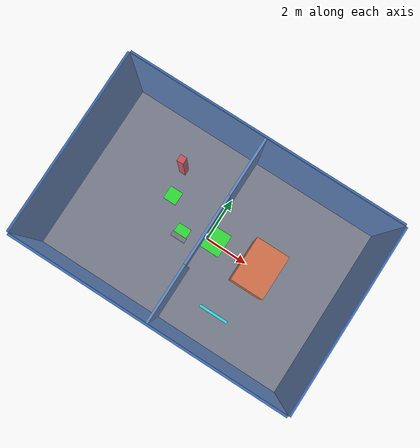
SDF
<sdf version="1.9">
 <world name="echorescue_visual_survivors_v0_16_1">
  <physics name="1ms" type="ignore">
   <max_step_size>0.001</max_step_size>
   <real_time_factor>1.0</real_time_factor>
  </physics>
  <plugin filename="gz-sim-physics-system" name="gz::sim::systems::Physics"/>
  <plugin filename="gz-sim-contact-system" name="gz::sim::systems::Contact"/>
  <plugin filename="gz-sim-sensors-system" name="gz::sim::systems::Sensors">
   <render_engine>ogre2</render_engine>
  </plugin>
  <plugin filename="gz-sim-user-commands-system" name="gz::sim::systems::UserCommands"/>
  <plugin filename="gz-sim-scene-broadcaster-system" name="gz::sim::systems::SceneBroadcaster"/>
  <plugin filename="gz-sim-imu-system" name="gz::sim::systems::Imu"/>
  <plugin filename="gz-sim-navsat-system" name="gz::sim::systems::NavSat"/>
  <scene><ambient>0.65 0.65 0.65</ambient><background>0.18 0.20 0.24</background><grid>true</grid></scene>
  <spherical_coordinates>
   <latitude_deg>-35.363262</latitude_deg>
   <longitude_deg>149.165237</longitude_deg>
   <elevation>584</elevation>
   <heading_deg>0</heading_deg>
   <surface_model>EARTH_WGS84</surface_model>
  </spherical_coordinates>
  <light type="directional" name="indoor_sun">
   <pose>0 0 8 0 0 0</pose>
   <diffuse>0.8 0.8 0.8 1</diffuse>
   <specular>0.2 0.2 0.2 1</specular>
   <direction>-0.4 0.2 -0.9</direction>
  </light>
  <model name="floor">
   <static>true</static>
   <pose>0 0 -0.05 0 0 0</pose>
   <link name="link">
    <collision name="collision"><geometry><box><size>12 8 0.1</size></box></geometry></collision>
    <visual name="visual">
     <geometry><box><size>12 8 0.1</size></box></geometry>
     <material><ambient>0.32 0.34 0.38 1</ambient><diffuse>0.42 0.44 0.48 1</diffuse></material>
    </visual>
    <sensor name="contact" type="contact">
     <always_on>true</always_on>
     <update_rate>50</update_rate>
     <contact><collision>collision</collision><topic>/echorescue/indoor/contacts/floor</topic></contact>
    </sensor>
   </link>
  </model>
  <model name="ceiling">
   <static>true</static>
   <pose>0 0 4.55 0 0 0</pose>
   <link name="link">
    <collision name="collision"><geometry><box><size>12 8 0.1</size></box></geometry></collision>
    <visual name="visual">
     <transparency>0.65</transparency>
     <geometry><box><size>12 8 0.1</size></box></geometry>
     <material><ambient>0.55 0.58 0.65 0.35</ambient><diffuse>0.55 0.58 0.65 0.35</diffuse></material>
    </visual>
    <sensor name="contact" type="contact">
     <always_on>true</always_on>
     <update_rate>50</update_rate>
     <contact><collision>collision</collision><topic>/echorescue/indoor/contacts/ceiling</topic></contact>
    </sensor>
   </link>
  </model>
  <model name="wall_west">
   <static>true</static>
   <pose>-6.05 0 2.25 0 0 0</pose>
   <link name="link">
    <collision name="collision"><geometry><box><size>0.1 8 4.5</size></box></geometry></collision>
    <visual name="visual">
     <geometry><box><size>0.1 8 4.5</size></box></geometry>
     <material><ambient>0.18 0.32 0.55 1</ambient><diffuse>0.22 0.42 0.72 1</diffuse></material>
    </visual>
    <sensor name="contact" type="contact">
     <always_on>true</always_on>
     <update_rate>50</update_rate>
     <contact><collision>collision</collision><topic>/echorescue/indoor/contacts/wall_west</topic></contact>
    </sensor>
   </link>
  </model>
  <model name="wall_east">
   <static>true</static>
   <pose>6.05 0 2.25 0 0 0</pose>
   <link name="link">
    <collision name="collision"><geometry><box><size>0.1 8 4.5</size></box></geometry></collision>
    <visual name="visual">
     <geometry><box><size>0.1 8 4.5</size></box></geometry>
     <material><ambient>0.18 0.32 0.55 1</ambient><diffuse>0.22 0.42 0.72 1</diffuse></material>
    </visual>
    <sensor name="contact" type="contact">
     <always_on>true</always_on>
     <update_rate>50</update_rate>
     <contact><collision>collision</collision><topic>/echorescue/indoor/contacts/wall_east</topic></contact>
    </sensor>
   </link>
  </model>
  <model name="wall_south">
   <static>true</static>
   <pose>0 -4.05 2.25 0 0 0</pose>
   <link name="link">
    <collision name="collision"><geometry><box><size>12 0.1 4.5</size></box></geometry></collision>
    <visual name="visual">
     <geometry><box><size>12 0.1 4.5</size></box></geometry>
     <material><ambient>0.18 0.32 0.55 1</ambient><diffuse>0.22 0.42 0.72 1</diffuse></material>
    </visual>
    <sensor name="contact" type="contact">
     <always_on>true</always_on>
     <update_rate>50</update_rate>
     <contact><collision>collision</collision><topic>/echorescue/indoor/contacts/wall_south</topic></contact>
    </sensor>
   </link>
  </model>
  <model name="wall_north">
   <static>true</static>
   <pose>0 4.05 2.25 0 0 0</pose>
   <link name="link">
    <collision name="collision"><geometry><box><size>12 0.1 4.5</size></box></geometry></collision>
    <visual name="visual">
     <geometry><box><size>12 0.1 4.5</size></box></geometry>
     <material><ambient>0.18 0.32 0.55 1</ambient><diffuse>0.22 0.42 0.72 1</diffuse></material>
    </visual>
    <sensor name="contact" type="contact">
     <always_on>true</always_on>
     <update_rate>50</update_rate>
     <contact><collision>collision</collision><topic>/echorescue/indoor/contacts/wall_north</topic></contact>
    </sensor>
   </link>
  </model>
  <model name="divider_south">
   <static>true</static>
   <pose>0 -2.75 2.25 0 0 0</pose>
   <link name="link">
    <collision name="collision"><geometry><box><size>0.1 2.5 4.5</size></box></geometry></collision>
    <visual name="visual">
     <geometry><box><size>0.1 2.5 4.5</size></box></geometry>
     <material><ambient>0.22 0.38 0.62 1</ambient><diffuse>0.28 0.50 0.80 1</diffuse></material>
    </visual>
    <sensor name="contact" type="contact">
     <always_on>true</always_on>
     <update_rate>50</update_rate>
     <contact><collision>collision</collision><topic>/echorescue/indoor/contacts/divider_south</topic></contact>
    </sensor>
   </link>
  </model>
  <model name="divider_north">
   <static>true</static>
   <pose>0 2.75 2.25 0 0 0</pose>
   <link name="link">
    <collision name="collision"><geometry><box><size>0.1 2.5 4.5</size></box></geometry></collision>
    <visual name="visual">
     <geometry><box><size>0.1 2.5 4.5</size></box></geometry>
     <material><ambient>0.22 0.38 0.62 1</ambient><diffuse>0.28 0.50 0.80 1</diffuse></material>
    </visual>
    <sensor name="contact" type="contact">
     <always_on>true</always_on>
     <update_rate>50</update_rate>
     <contact><collision>collision</collision><topic>/echorescue/indoor/contacts/divider_north</topic></contact>
    </sensor>
   </link>
  </model>
  <model name="divider_header">
   <static>true</static>
   <pose>0 0 3.85 0 0 0</pose>
   <link name="link">
    <collision name="collision"><geometry><box><size>0.1 3.0 1.3</size></box></geometry></collision>
    <visual name="visual">
     <geometry><box><size>0.1 3.0 1.3</size></box></geometry>
     <material><ambient>0.22 0.38 0.62 1</ambient><diffuse>0.28 0.50 0.80 1</diffuse></material>
    </visual>
    <sensor name="contact" type="contact">
     <always_on>true</always_on>
     <update_rate>50</update_rate>
     <contact><collision>collision</collision><topic>/echorescue/indoor/contacts/divider_header</topic></contact>
    </sensor>
   </link>
  </model>
  <model name="blocking_obstacle">
   <static>true</static>
   <pose>2.5 0 1.2 0 0 0</pose>
   <link name="link">
    <collision name="collision"><geometry><box><size>1.5 2 2.4</size></box></geometry></collision>
    <visual name="visual">
     <geometry><box><size>1.5 2 2.4</size></box></geometry>
     <material><ambient>0.75 0.26 0.08 1</ambient><diffuse>0.95 0.36 0.10 1</diffuse></material>
    </visual>
    <sensor name="contact" type="contact">
     <always_on>true</always_on>
     <update_rate>50</update_rate>
     <contact>
      <collision>collision</collision>
      <topic>/echorescue/indoor/contacts/blocking_obstacle</topic>
     </contact>
    </sensor>
   </link>
  </model>
  <model name="unknown_obstacle">
   <static>true</static>
   <pose>-2.5 2.0 1.2 0 0 0</pose>
   <link name="link">
    <collision name="collision"><geometry><box><size>0.3 0.3 2.4</size></box></geometry></collision>
    <visual name="visual">
     <geometry><box><size>0.3 0.3 2.4</size></box></geometry>
     <material><ambient>0.65 0.12 0.12 1</ambient><diffuse>0.9 0.18 0.18 1</diffuse></material>
    </visual>
    <sensor name="contact" type="contact">
     <always_on>true</always_on>
     <update_rate>50</update_rate>
     <contact><collision>collision</collision><topic>/echorescue/indoor/contacts/unknown_obstacle</topic></contact>
    </sensor>
   </link>
  </model>
  <model name="survivor_alpha">
   <static>true</static>
   <pose>-1.85 0.8 0 0 0 0</pose>
   <link name="link">
    <visual name="rescue_panel">
     <visibility_flags>2</visibility_flags>
     <pose>-0.45 0 0.025 0 0 0</pose>
     <geometry><box><size>0.62 0.62 0.05</size></box></geometry>
     <material><ambient>0 1 0 1</ambient><diffuse>0 1 0 1</diffuse><emissive>0 0.35 0 1</emissive></material>
    </visual>
   </link>
  </model>
  <model name="survivor_bravo">
   <static>true</static>
   <pose>-0.65 -0.37 0 0 0 0</pose>
   <link name="link">
    <visual name="rescue_panel">
     <visibility_flags>2</visibility_flags>
     <pose>-0.45 0 0.025 0 0 0</pose>
     <geometry><box><size>0.62 0.62 0.05</size></box></geometry>
     <material><ambient>0 1 0 1</ambient><diffuse>0 1 0 1</diffuse><emissive>0 0.35 0 1</emissive></material>
    </visual>
    <visual name="partial_occluder">
     <visibility_flags>2</visibility_flags>
     <pose>-0.45 -0.24 0.09 0 0 0</pose>
     <geometry><box><size>0.7 0.22 0.14</size></box></geometry>
     <material><ambient>0.3 0.3 0.3 1</ambient><diffuse>0.4 0.4 0.4 1</diffuse></material>
    </visual>
   </link>
  </model>
  <model name="survivor_charlie">
   <static>true</static>
   <pose>0.75 0.12 0 0 0 0</pose>
   <link name="link">
    <visual name="rescue_panel">
     <visibility_flags>2</visibility_flags>
     <pose>-0.45 0 0.025 0 0 0</pose>
     <geometry><box><size>1.10 1.10 0.05</size></box></geometry>
     <material><ambient>0 1 0 1</ambient><diffuse>0 1 0 1</diffuse><emissive>0 0.35 0 1</emissive></material>
    </visual>
   </link>
  </model>
  <model name="green_distractor">
   <static>true</static>
   <pose>2.0 -2.6 0.025 0 0 0</pose>
   <link name="link">
    <visual name="strip">
     <visibility_flags>2</visibility_flags>
     <geometry><box><size>1.4 0.12 0.05</size></box></geometry>
     <material><ambient>0 0.75 0.75 1</ambient><diffuse>0 1 1 1</diffuse></material>
    </visual>
   </link>
  </model>
 </world>
</sdf>
